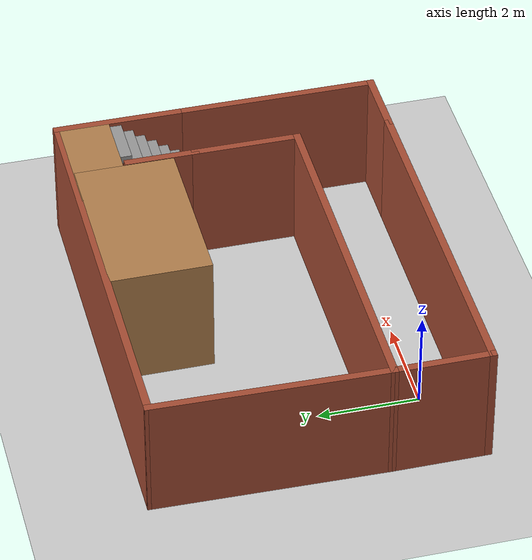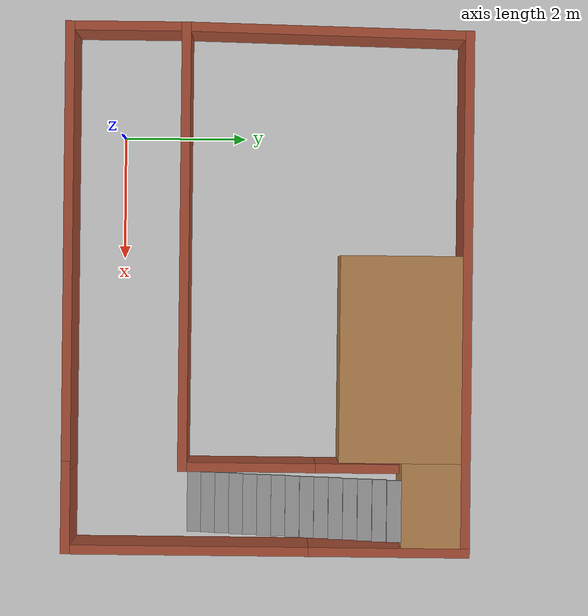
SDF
<sdf version="1.7">
 <world name="default">
  <light name="sun" type="directional">
   <pose>0 0 10 0 -0 0</pose>
   <diffuse>0.8 0.8 0.8 1</diffuse>
   <specular>0.2 0.2 0.2 1</specular>
   <attenuation>
    <range>1000</range>
    <constant>0.9</constant>
    <linear>0.01</linear>
    <quadratic>0.001</quadratic>
   </attenuation>
   <direction>-0.5 0.1 -0.9</direction>
   <spot><inner_angle>0</inner_angle><outer_angle>0</outer_angle><falloff>0</falloff></spot>
  </light>
  <model name="ground_plane">
   <static>1</static>
   <link name="link">
    <collision name="collision">
     <geometry><plane><normal>0 0 1</normal><size>100 100</size></plane></geometry>
     <surface>
      <contact><collide_bitmask>65535</collide_bitmask></contact>
      <friction><ode><mu>100</mu><mu2>50</mu2></ode></friction>
     </surface>
    </collision>
    <visual name="visual">
     <cast_shadows>0</cast_shadows>
     <geometry><plane><normal>0 0 1</normal><size>100 100</size></plane></geometry>
     <material>
      <script><uri>file://media/materials/scripts/gazebo.material</uri><name>Gazebo/Grey</name></script>
     </material>
    </visual>
   </link>
  </model>
  <gravity>0 0 -9.8</gravity>
  <magnetic_field>6e-06 2.3e-05 -4.2e-05</magnetic_field>
  <atmosphere type="adiabatic"/>
  <physics type="ode">
   <max_step_size>0.001</max_step_size>
   <real_time_factor>1</real_time_factor>
   <real_time_update_rate>1000</real_time_update_rate>
  </physics>
  <scene><ambient>0.4 0.4 0.4 1</ambient><background>0.7 0.7 0.7 1</background><shadows>1</shadows></scene>
  <spherical_coordinates>
   <surface_model>EARTH_WGS84</surface_model>
   <latitude_deg>0</latitude_deg>
   <longitude_deg>0</longitude_deg>
   <elevation>0</elevation>
   <heading_deg>0</heading_deg>
  </spherical_coordinates>
  <model name="2F_DEMO">
   <pose>2.49908 2.39146 0 0 -0 0</pose>
   <link name="Stairs_0">
    <visual name="Stairs_0_Visual_0">
     <pose>3.55799 -1.19298 0.083333 0 -0 -3.14159</pose>
     <geometry><box><size>1 0.233333 0.166667</size></box></geometry>
     <material>
      <script><uri>file://media/materials/scripts/gazebo.material</uri><name>Gazebo/Grey</name></script>
      <ambient>1 1 1 1</ambient>
     </material>
     <meta><layer>0</layer></meta>
    </visual>
    <collision name="Stairs_0_Collision_0">
     <geometry><box><size>1 0.233333 0.166667</size></box></geometry>
     <pose>3.55799 -1.19298 0.083333 0 -0 -3.14159</pose>
    </collision>
    <visual name="Stairs_0_Visual_1">
     <pose>3.55799 -0.959651 0.25 0 -0 -3.14159</pose>
     <geometry><box><size>1 0.233333 0.166667</size></box></geometry>
     <material>
      <script><uri>file://media/materials/scripts/gazebo.material</uri><name>Gazebo/Grey</name></script>
      <ambient>1 1 1 1</ambient>
     </material>
     <meta><layer>0</layer></meta>
    </visual>
    <collision name="Stairs_0_Collision_1">
     <geometry><box><size>1 0.233333 0.166667</size></box></geometry>
     <pose>3.55799 -0.959651 0.25 0 -0 -3.14159</pose>
    </collision>
    <visual name="Stairs_0_Visual_2">
     <pose>3.55799 -0.726318 0.416667 0 -0 -3.14159</pose>
     <geometry><box><size>1 0.233333 0.166667</size></box></geometry>
     <material>
      <script><uri>file://media/materials/scripts/gazebo.material</uri><name>Gazebo/Grey</name></script>
      <ambient>1 1 1 1</ambient>
     </material>
     <meta><layer>0</layer></meta>
    </visual>
    <collision name="Stairs_0_Collision_2">
     <geometry><box><size>1 0.233333 0.166667</size></box></geometry>
     <pose>3.55799 -0.726318 0.416667 0 -0 -3.14159</pose>
    </collision>
    <visual name="Stairs_0_Visual_3">
     <pose>3.55799 -0.492984 0.583333 0 -0 -3.14159</pose>
     <geometry><box><size>1 0.233333 0.166667</size></box></geometry>
     <material>
      <script><uri>file://media/materials/scripts/gazebo.material</uri><name>Gazebo/Grey</name></script>
      <ambient>1 1 1 1</ambient>
     </material>
     <meta><layer>0</layer></meta>
    </visual>
    <collision name="Stairs_0_Collision_3">
     <geometry><box><size>1 0.233333 0.166667</size></box></geometry>
     <pose>3.55799 -0.492984 0.583333 0 -0 -3.14159</pose>
    </collision>
    <visual name="Stairs_0_Visual_4">
     <pose>3.55799 -0.259651 0.75 0 -0 -3.14159</pose>
     <geometry><box><size>1 0.233333 0.166667</size></box></geometry>
     <material>
      <script><uri>file://media/materials/scripts/gazebo.material</uri><name>Gazebo/Grey</name></script>
      <ambient>1 1 1 1</ambient>
     </material>
     <meta><layer>0</layer></meta>
    </visual>
    <collision name="Stairs_0_Collision_4">
     <geometry><box><size>1 0.233333 0.166667</size></box></geometry>
     <pose>3.55799 -0.259651 0.75 0 -0 -3.14159</pose>
    </collision>
    <visual name="Stairs_0_Visual_5">
     <pose>3.55799 -0.026318 0.916667 0 -0 -3.14159</pose>
     <geometry><box><size>1 0.233333 0.166667</size></box></geometry>
     <material>
      <script><uri>file://media/materials/scripts/gazebo.material</uri><name>Gazebo/Grey</name></script>
      <ambient>1 1 1 1</ambient>
     </material>
     <meta><layer>0</layer></meta>
    </visual>
    <collision name="Stairs_0_Collision_5">
     <geometry><box><size>1 0.233333 0.166667</size></box></geometry>
     <pose>3.55799 -0.026318 0.916667 0 -0 -3.14159</pose>
    </collision>
    <visual name="Stairs_0_Visual_6">
     <pose>3.55799 0.207016 1.08333 0 -0 -3.14159</pose>
     <geometry><box><size>1 0.233333 0.166667</size></box></geometry>
     <material>
      <script><uri>file://media/materials/scripts/gazebo.material</uri><name>Gazebo/Grey</name></script>
      <ambient>1 1 1 1</ambient>
     </material>
     <meta><layer>0</layer></meta>
    </visual>
    <collision name="Stairs_0_Collision_6">
     <geometry><box><size>1 0.233333 0.166667</size></box></geometry>
     <pose>3.55799 0.207016 1.08333 0 -0 -3.14159</pose>
    </collision>
    <visual name="Stairs_0_Visual_7">
     <pose>3.55799 0.440349 1.25 0 -0 -3.14159</pose>
     <geometry><box><size>1 0.233333 0.166667</size></box></geometry>
     <material>
      <script><uri>file://media/materials/scripts/gazebo.material</uri><name>Gazebo/Grey</name></script>
      <ambient>1 1 1 1</ambient>
     </material>
     <meta><layer>0</layer></meta>
    </visual>
    <collision name="Stairs_0_Collision_7">
     <geometry><box><size>1 0.233333 0.166667</size></box></geometry>
     <pose>3.55799 0.440349 1.25 0 -0 -3.14159</pose>
    </collision>
    <visual name="Stairs_0_Visual_8">
     <pose>3.55799 0.673683 1.41667 0 -0 -3.14159</pose>
     <geometry><box><size>1 0.233333 0.166667</size></box></geometry>
     <material>
      <script><uri>file://media/materials/scripts/gazebo.material</uri><name>Gazebo/Grey</name></script>
      <ambient>1 1 1 1</ambient>
     </material>
     <meta><layer>0</layer></meta>
    </visual>
    <collision name="Stairs_0_Collision_8">
     <geometry><box><size>1 0.233333 0.166667</size></box></geometry>
     <pose>3.55799 0.673683 1.41667 0 -0 -3.14159</pose>
    </collision>
    <visual name="Stairs_0_Visual_9">
     <pose>3.55799 0.907016 1.58333 0 -0 -3.14159</pose>
     <geometry><box><size>1 0.233333 0.166667</size></box></geometry>
     <material>
      <script><uri>file://media/materials/scripts/gazebo.material</uri><name>Gazebo/Grey</name></script>
      <ambient>1 1 1 1</ambient>
     </material>
     <meta><layer>0</layer></meta>
    </visual>
    <collision name="Stairs_0_Collision_9">
     <geometry><box><size>1 0.233333 0.166667</size></box></geometry>
     <pose>3.55799 0.907016 1.58333 0 -0 -3.14159</pose>
    </collision>
    <visual name="Stairs_0_Visual_10">
     <pose>3.55799 1.14035 1.75 0 -0 -3.14159</pose>
     <geometry><box><size>1 0.233333 0.166667</size></box></geometry>
     <material>
      <script><uri>file://media/materials/scripts/gazebo.material</uri><name>Gazebo/Grey</name></script>
      <ambient>1 1 1 1</ambient>
     </material>
     <meta><layer>0</layer></meta>
    </visual>
    <collision name="Stairs_0_Collision_10">
     <geometry><box><size>1 0.233333 0.166667</size></box></geometry>
     <pose>3.55799 1.14035 1.75 0 -0 -3.14159</pose>
    </collision>
    <visual name="Stairs_0_Visual_11">
     <pose>3.55799 1.37368 1.91667 0 -0 -3.14159</pose>
     <geometry><box><size>1 0.233333 0.166667</size></box></geometry>
     <material>
      <script><uri>file://media/materials/scripts/gazebo.material</uri><name>Gazebo/Grey</name></script>
      <ambient>1 1 1 1</ambient>
     </material>
     <meta><layer>0</layer></meta>
    </visual>
    <collision name="Stairs_0_Collision_11">
     <geometry><box><size>1 0.233333 0.166667</size></box></geometry>
     <pose>3.55799 1.37368 1.91667 0 -0 -3.14159</pose>
    </collision>
    <visual name="Stairs_0_Visual_12">
     <pose>3.55799 1.60702 2.08333 0 -0 -3.14159</pose>
     <geometry><box><size>1 0.233333 0.166667</size></box></geometry>
     <material>
      <script><uri>file://media/materials/scripts/gazebo.material</uri><name>Gazebo/Grey</name></script>
      <ambient>1 1 1 1</ambient>
     </material>
     <meta><layer>0</layer></meta>
    </visual>
    <collision name="Stairs_0_Collision_12">
     <geometry><box><size>1 0.233333 0.166667</size></box></geometry>
     <pose>3.55799 1.60702 2.08333 0 -0 -3.14159</pose>
    </collision>
    <visual name="Stairs_0_Visual_13">
     <pose>3.55799 1.84035 2.25 0 -0 -3.14159</pose>
     <geometry><box><size>1 0.233333 0.166667</size></box></geometry>
     <material>
      <script><uri>file://media/materials/scripts/gazebo.material</uri><name>Gazebo/Grey</name></script>
      <ambient>1 1 1 1</ambient>
     </material>
     <meta><layer>0</layer></meta>
    </visual>
    <collision name="Stairs_0_Collision_13">
     <geometry><box><size>1 0.233333 0.166667</size></box></geometry>
     <pose>3.55799 1.84035 2.25 0 -0 -3.14159</pose>
    </collision>
    <visual name="Stairs_0_Visual_14">
     <pose>3.55799 2.07368 2.41667 0 -0 -3.14159</pose>
     <geometry><box><size>1 0.233333 0.166667</size></box></geometry>
     <material>
      <script><uri>file://media/materials/scripts/gazebo.material</uri><name>Gazebo/Grey</name></script>
      <ambient>1 1 1 1</ambient>
     </material>
     <meta><layer>0</layer></meta>
    </visual>
    <collision name="Stairs_0_Collision_14">
     <geometry><box><size>1 0.233333 0.166667</size></box></geometry>
     <pose>3.55799 2.07368 2.41667 0 -0 -3.14159</pose>
    </collision>
   </link>
   <link name="Wall_10">
    <collision name="Wall_10_Collision">
     <geometry><box><size>7.25 0.15 2.5</size></box></geometry>
     <pose>0 0 1.25 0 -0 0</pose>
    </collision>
    <visual name="Wall_10_Visual">
     <pose>0 0 1.25 0 -0 0</pose>
     <geometry><box><size>7.25 0.15 2.5</size></box></geometry>
     <material>
      <script><uri>file://media/materials/scripts/gazebo.material</uri><name>Gazebo/Bricks</name></script>
      <ambient>1 1 1 1</ambient>
     </material>
     <meta><layer>0</layer></meta>
    </visual>
    <pose>-0.674189 -1.34936 0 0 -0 0</pose>
   </link>
   <link name="Wall_16">
    <collision name="Wall_16_Collision">
     <geometry><box><size>1.5 0.15 2.5</size></box></geometry>
     <pose>0 0 1.25 0 -0 0</pose>
    </collision>
    <visual name="Wall_16_Visual">
     <pose>0 0 1.25 0 -0 0</pose>
     <geometry><box><size>1.5 0.15 2.5</size></box></geometry>
     <material>
      <script><uri>file://media/materials/scripts/gazebo.material</uri><name>Gazebo/Bricks</name></script>
      <ambient>1 1 1 1</ambient>
     </material>
     <meta><layer>0</layer></meta>
    </visual>
    <pose>3.55081 -3.22581 0 0 -0 0</pose>
   </link>
   <link name="Wall_17">
    <collision name="Wall_17_Collision">
     <geometry><box><size>4 0.15 2.5</size></box></geometry>
     <pose>0 0 1.25 0 -0 0</pose>
    </collision>
    <visual name="Wall_17_Visual">
     <pose>0 0 1.25 0 -0 0</pose>
     <geometry><box><size>4 0.15 2.5</size></box></geometry>
     <material>
      <script><uri>file://media/materials/scripts/gazebo.material</uri><name>Gazebo/Bricks</name></script>
      <ambient>1 1 1 1</ambient>
     </material>
     <meta><layer>0</layer></meta>
    </visual>
    <pose>4.22581 -1.30081 0 0 -0 1.5708</pose>
   </link>
   <link name="Wall_19">
    <collision name="Wall_19_Collision">
     <geometry><box><size>2.22355 0.15 2.5</size></box></geometry>
     <pose>0 0 1.25 0 -0 0</pose>
    </collision>
    <visual name="Wall_19_Visual">
     <pose>0 0 1.25 0 -0 0</pose>
     <geometry><box><size>2.22355 0.15 2.5</size></box></geometry>
     <material>
      <script><uri>file://media/materials/scripts/gazebo.material</uri><name>Gazebo/Bricks</name></script>
      <ambient>1 1 1 1</ambient>
     </material>
     <meta><layer>0</layer></meta>
    </visual>
    <pose>2.87581 -0.312586 0 0 -0 1.5708</pose>
   </link>
   <link name="Wall_24">
    <collision name="Wall_24_Collision">
     <geometry><box><size>2.75 0.15 2.5</size></box></geometry>
     <pose>0 0 1.25 0 -0 0</pose>
    </collision>
    <visual name="Wall_24_Visual">
     <pose>0 0 1.25 0 -0 0</pose>
     <geometry><box><size>2.75 0.15 2.5</size></box></geometry>
     <material>
      <script><uri>file://media/materials/scripts/gazebo.material</uri><name>Gazebo/Bricks</name></script>
      <ambient>1 1 1 1</ambient>
     </material>
     <meta><layer>0</layer></meta>
    </visual>
    <pose>4.22581 1.92419 0 0 -0 1.5708</pose>
   </link>
   <link name="Wall_28">
    <collision name="Wall_28_Collision">
     <geometry><box><size>8.5 0.15 2.5</size></box></geometry>
     <pose>0 0 1.25 0 -0 0</pose>
    </collision>
    <visual name="Wall_28_Visual">
     <pose>0 0 1.25 0 -0 0</pose>
     <geometry><box><size>8.5 0.15 2.5</size></box></geometry>
     <material>
      <script><uri>file://media/materials/scripts/gazebo.material</uri><name>Gazebo/Bricks</name></script>
      <ambient>1 1 1 1</ambient>
     </material>
     <meta><layer>0</layer></meta>
    </visual>
    <pose>0.050811 3.22419 0 0 -0 3.14159</pose>
   </link>
   <link name="Wall_29">
    <collision name="Wall_29_Collision">
     <geometry><box><size>4.72464 0.15 2.5</size></box></geometry>
     <pose>0 0 1.25 0 -0 0</pose>
    </collision>
    <visual name="Wall_29_Visual">
     <pose>0 0 1.25 0 -0 0</pose>
     <geometry><box><size>4.72464 0.15 2.5</size></box></geometry>
     <material>
      <script><uri>file://media/materials/scripts/gazebo.material</uri><name>Gazebo/Bricks</name></script>
      <ambient>1 1 1 1</ambient>
     </material>
     <meta><layer>0</layer></meta>
    </visual>
    <pose>-4.17419 0.937414 0 0 -0 -1.59266</pose>
   </link>
   <link name="Wall_31">
    <collision name="Wall_31_Collision">
     <geometry><box><size>1.5 0.15 2.5</size></box></geometry>
     <pose>0 0 1.25 0 -0 0</pose>
    </collision>
    <visual name="Wall_31_Visual">
     <pose>0 0 1.25 0 -0 0</pose>
     <geometry><box><size>1.5 0.15 2.5</size></box></geometry>
     <material>
      <script><uri>file://media/materials/scripts/gazebo.material</uri><name>Gazebo/Bricks</name></script>
      <ambient>1 1 1 1</ambient>
     </material>
     <meta><layer>0</layer></meta>
    </visual>
    <pose>2.87581 1.39919 0 0 -0 1.5708</pose>
   </link>
   <link name="Wall_46">
    <collision name="Wall_46_Collision">
     <geometry><box><size>3.35 2 2.5</size></box></geometry>
     <pose>0 0 1.25 0 -0 0</pose>
    </collision>
    <visual name="Wall_46_Visual">
     <pose>0 0 1.25 0 -0 0</pose>
     <geometry><box><size>3.35 2 2.5</size></box></geometry>
     <material>
      <script><uri>file://media/materials/scripts/gazebo.material</uri><name>Gazebo/Wood</name></script>
      <ambient>1 1 1 1</ambient>
     </material>
     <meta><layer>0</layer></meta>
    </visual>
    <pose>1.11196 2.17261 0 0 -0 0</pose>
   </link>
   <link name="Wall_49">
    <collision name="Wall_49_Collision">
     <geometry><box><size>2.35 1 2.5</size></box></geometry>
     <pose>0 0 1.25 0 -0 0</pose>
    </collision>
    <visual name="Wall_49_Visual">
     <pose>0 0 1.25 0 -0 0</pose>
     <geometry><box><size>2.35 1 2.5</size></box></geometry>
     <material>
      <script><uri>file://media/materials/scripts/gazebo.material</uri><name>Gazebo/Wood</name></script>
      <ambient>1 1 1 1</ambient>
     </material>
     <meta><layer>0</layer></meta>
    </visual>
    <pose>3.08284 2.68861 0 0 -0 0</pose>
   </link>
   <link name="Wall_6">
    <collision name="Wall_6_Collision">
     <geometry><box><size>7.25 0.15 2.5</size></box></geometry>
     <pose>0 0 1.25 0 -0 0</pose>
    </collision>
    <visual name="Wall_6_Visual">
     <pose>0 0 1.25 0 -0 0</pose>
     <geometry><box><size>7.25 0.15 2.5</size></box></geometry>
     <material>
      <script><uri>file://media/materials/scripts/gazebo.material</uri><name>Gazebo/Bricks</name></script>
      <ambient>1 1 1 1</ambient>
     </material>
     <meta><layer>0</layer></meta>
    </visual>
    <pose>-0.674189 -3.22581 0 0 -0 0</pose>
   </link>
   <link name="Wall_9">
    <collision name="Wall_9_Collision">
     <geometry><box><size>2.02645 0.15 2.5</size></box></geometry>
     <pose>0 0 1.25 0 -0 0</pose>
    </collision>
    <visual name="Wall_9_Visual">
     <pose>0 0 1.25 0 -0 0</pose>
     <geometry><box><size>2.02645 0.15 2.5</size></box></geometry>
     <material>
      <script><uri>file://media/materials/scripts/gazebo.material</uri><name>Gazebo/Bricks</name></script>
      <ambient>1 1 1 1</ambient>
     </material>
     <meta><layer>0</layer></meta>
    </visual>
    <pose>-4.22419 -2.28759 0 0 -0 1.5708</pose>
   </link>
   <static>1</static>
  </model>
 </world>
</sdf>
